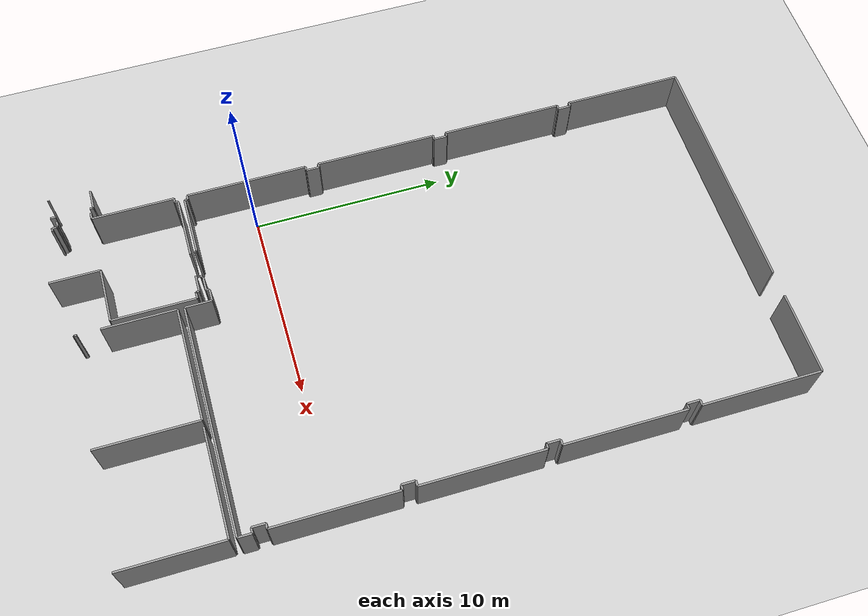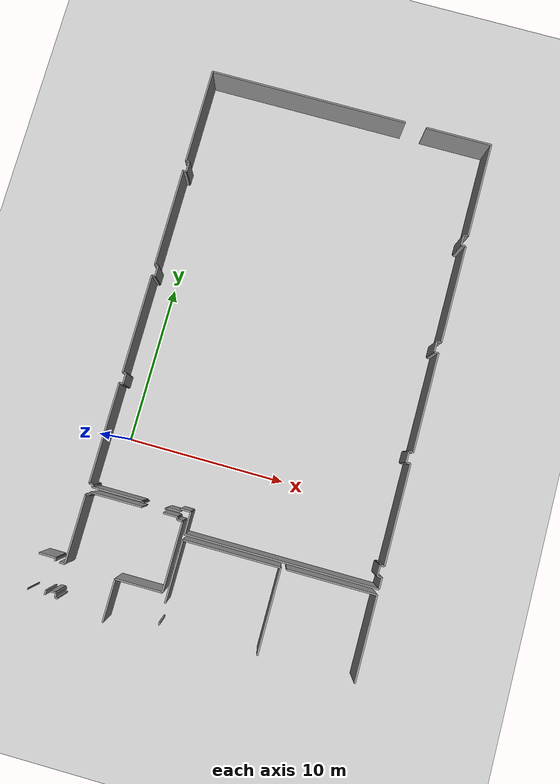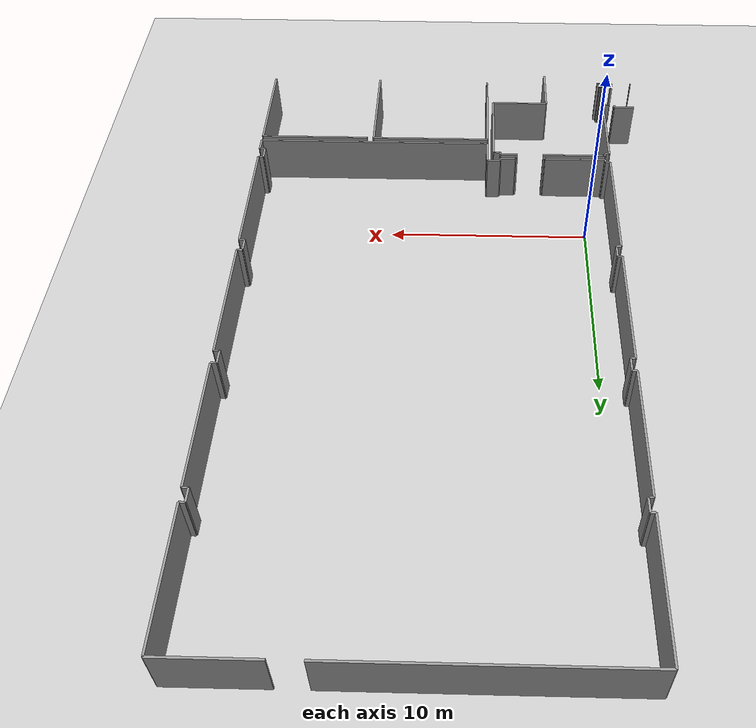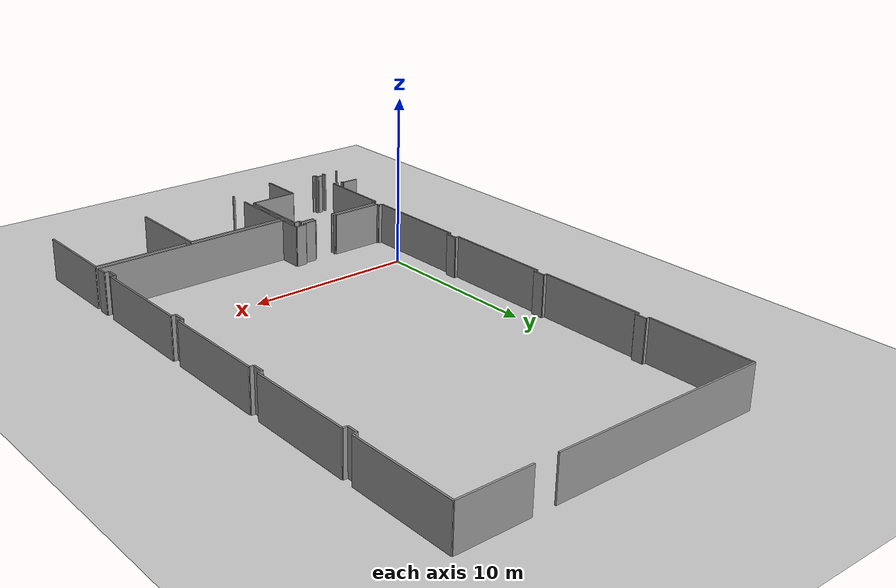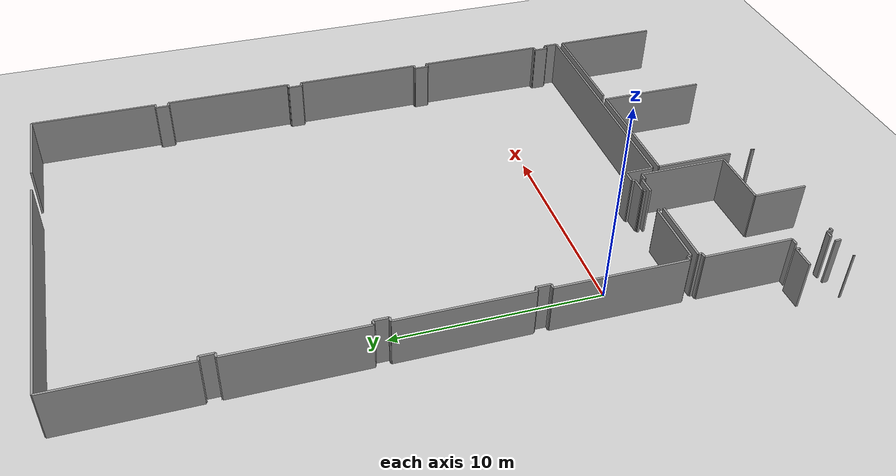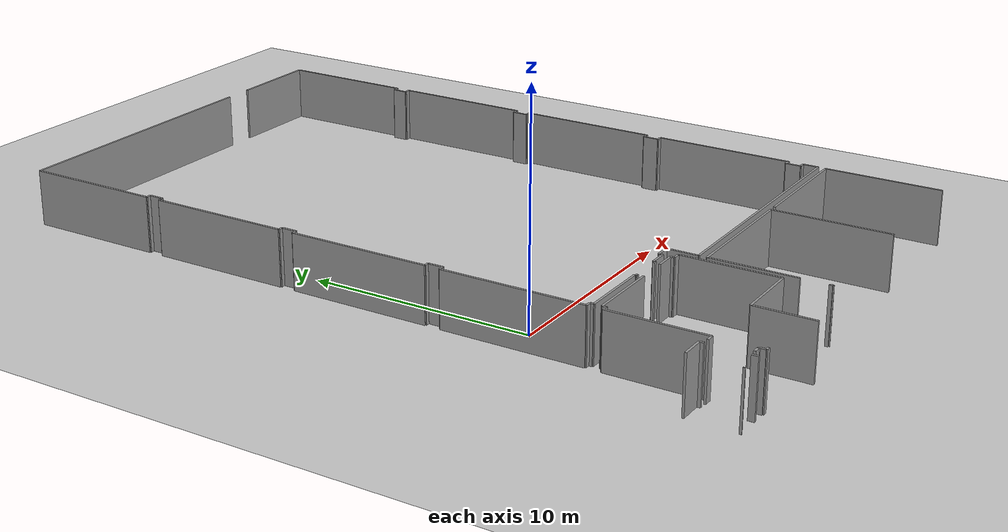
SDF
<sdf version="1.6">
 <world name="default">
  <model name="ground_plane">
   <static>1</static>
   <link name="link">
    <collision name="collision">
     <geometry><plane><normal>0 0 1</normal><size>100 100</size></plane></geometry>
     <surface><friction><ode><mu>100</mu><mu2>50</mu2></ode></friction></surface>
    </collision>
    <visual name="visual">
     <cast_shadows>0</cast_shadows>
     <geometry><plane><normal>0 0 1</normal><size>100 100</size></plane></geometry>
     <material>
      <script><uri>file://media/materials/scripts/gazebo.material</uri><name>Gazebo/Grey</name></script>
     </material>
    </visual>
   </link>
  </model>
  <model name="50055648">
   <static>1</static>
   <link name="Wall_82">
    <collision name="Wall_82_Collision">
     <geometry><box><size>1.06134322481 0.1 2.5</size></box></geometry>
     <pose>0.530671612403 0 1.25 0 0 0</pose>
    </collision>
    <visual name="Wall_82_Visual">
     <pose>0.530671612403 0 1.25 0 0 0</pose>
     <geometry><box><size>1.06134322481 0.1 2.5</size></box></geometry>
     <material>
      <script><uri>file://media/materials/scripts/gazebo.material</uri><name>Gazebo/Grey</name></script>
      <ambient>1 1 1 1</ambient>
     </material>
    </visual>
    <pose>14.1575945428 -31.9669465581 0 0 0 0.0</pose>
   </link>
   <link name="Wall_83">
    <collision name="Wall_83_Collision">
     <geometry><box><size>0.185592154571 0.1 2.5</size></box></geometry>
     <pose>0.0927960772856 0 1.25 0 0 0</pose>
    </collision>
    <visual name="Wall_83_Visual">
     <pose>0.0927960772856 0 1.25 0 0 0</pose>
     <geometry><box><size>0.185592154571 0.1 2.5</size></box></geometry>
     <material>
      <script><uri>file://media/materials/scripts/gazebo.material</uri><name>Gazebo/Grey</name></script>
      <ambient>1 1 1 1</ambient>
     </material>
    </visual>
    <pose>15.2189377676 -31.9669465581 0 0 0 -1.57079632679</pose>
   </link>
   <link name="Wall_84">
    <collision name="Wall_84_Collision">
     <geometry><box><size>0.27845174731 0.1 2.5</size></box></geometry>
     <pose>0.139225873655 0 1.25 0 0 0</pose>
    </collision>
    <visual name="Wall_84_Visual">
     <pose>0.139225873655 0 1.25 0 0 0</pose>
     <geometry><box><size>0.27845174731 0.1 2.5</size></box></geometry>
     <material>
      <script><uri>file://media/materials/scripts/gazebo.material</uri><name>Gazebo/Grey</name></script>
      <ambient>1 1 1 1</ambient>
     </material>
    </visual>
    <pose>15.2189377676 -33.9116627075 0 0 0 -1.57079632679</pose>
   </link>
   <link name="Wall_89">
    <collision name="Wall_89_Collision">
     <geometry><box><size>0.0409039519315 0.1 2.5</size></box></geometry>
     <pose>0.0204519759657 0 1.25 0 0 0</pose>
    </collision>
    <visual name="Wall_89_Visual">
     <pose>0.0204519759657 0 1.25 0 0 0</pose>
     <geometry><box><size>0.0409039519315 0.1 2.5</size></box></geometry>
     <material>
      <script><uri>file://media/materials/scripts/gazebo.material</uri><name>Gazebo/Grey</name></script>
      <ambient>1 1 1 1</ambient>
     </material>
    </visual>
    <pose>14.1706787261 -34.1262179088 0 0 0 3.14159265359</pose>
   </link>
   <link name="Wall_166">
    <collision name="Wall_166_Collision">
     <geometry><box><size>0.175810774762 0.1 2.5</size></box></geometry>
     <pose>0.0879053873808 0 1.25 0 0 0</pose>
    </collision>
    <visual name="Wall_166_Visual">
     <pose>0.0879053873808 0 1.25 0 0 0</pose>
     <geometry><box><size>0.175810774762 0.1 2.5</size></box></geometry>
     <material>
      <script><uri>file://media/materials/scripts/gazebo.material</uri><name>Gazebo/Grey</name></script>
      <ambient>1 1 1 1</ambient>
     </material>
    </visual>
    <pose>16.0258380864 -34.1869386822 0 0 0 3.14159265359</pose>
   </link>
   <link name="Wall_167">
    <collision name="Wall_167_Collision">
     <geometry><box><size>0.235515300873 0.1 2.5</size></box></geometry>
     <pose>0.117757650436 0 1.25 0 0 0</pose>
    </collision>
    <visual name="Wall_167_Visual">
     <pose>0.117757650436 0 1.25 0 0 0</pose>
     <geometry><box><size>0.235515300873 0.1 2.5</size></box></geometry>
     <material>
      <script><uri>file://media/materials/scripts/gazebo.material</uri><name>Gazebo/Grey</name></script>
      <ambient>1 1 1 1</ambient>
     </material>
    </visual>
    <pose>15.8500273116 -34.1869386822 0 0 0 1.57079632679</pose>
   </link>
   <link name="Wall_168">
    <collision name="Wall_168_Collision">
     <geometry><box><size>0.077730563643 0.1 2.5</size></box></geometry>
     <pose>0.0388652818215 0 1.25 0 0 0</pose>
    </collision>
    <visual name="Wall_168_Visual">
     <pose>0.0388652818215 0 1.25 0 0 0</pose>
     <geometry><box><size>0.077730563643 0.1 2.5</size></box></geometry>
     <material>
      <script><uri>file://media/materials/scripts/gazebo.material</uri><name>Gazebo/Grey</name></script>
      <ambient>1 1 1 1</ambient>
     </material>
    </visual>
    <pose>15.8500273116 -33.9514233813 0 0 0 2.38508818102</pose>
   </link>
   <link name="Wall_169">
    <collision name="Wall_169_Collision">
     <geometry><box><size>0.285692508987 0.1 2.5</size></box></geometry>
     <pose>0.142846254494 0 1.25 0 0 0</pose>
    </collision>
    <visual name="Wall_169_Visual">
     <pose>0.142846254494 0 1.25 0 0 0</pose>
     <geometry><box><size>0.285692508987 0.1 2.5</size></box></geometry>
     <material>
      <script><uri>file://media/materials/scripts/gazebo.material</uri><name>Gazebo/Grey</name></script>
      <ambient>1 1 1 1</ambient>
     </material>
    </visual>
    <pose>15.7934985582 -33.8980704005 0 0 0 3.14159265359</pose>
   </link>
   <link name="Wall_170">
    <collision name="Wall_170_Collision">
     <geometry><box><size>0.335869717102 0.1 2.5</size></box></geometry>
     <pose>0.167934858551 0 1.25 0 0 0</pose>
    </collision>
    <visual name="Wall_170_Visual">
     <pose>0.167934858551 0 1.25 0 0 0</pose>
     <geometry><box><size>0.335869717102 0.1 2.5</size></box></geometry>
     <material>
      <script><uri>file://media/materials/scripts/gazebo.material</uri><name>Gazebo/Grey</name></script>
      <ambient>1 1 1 1</ambient>
     </material>
    </visual>
    <pose>15.5078060492 -32.1560955781 0 0 0 0.0</pose>
   </link>
   <link name="Wall_171">
    <collision name="Wall_171_Collision">
     <geometry><box><size>4.2717953278 0.1 2.5</size></box></geometry>
     <pose>2.1358976639 0 1.25 0 0 0</pose>
    </collision>
    <visual name="Wall_171_Visual">
     <pose>2.1358976639 0 1.25 0 0 0</pose>
     <geometry><box><size>4.2717953278 0.1 2.5</size></box></geometry>
     <material>
      <script><uri>file://media/materials/scripts/gazebo.material</uri><name>Gazebo/Grey</name></script>
      <ambient>1 1 1 1</ambient>
     </material>
    </visual>
    <pose>15.8436757663 -32.1560955781 0 0 0 1.57079632679</pose>
   </link>
   <link name="Wall_172">
    <collision name="Wall_172_Collision">
     <geometry><box><size>0.238309980818 0.1 2.5</size></box></geometry>
     <pose>0.119154990409 0 1.25 0 0 0</pose>
    </collision>
    <visual name="Wall_172_Visual">
     <pose>0.119154990409 0 1.25 0 0 0</pose>
     <geometry><box><size>0.238309980818 0.1 2.5</size></box></geometry>
     <material>
      <script><uri>file://media/materials/scripts/gazebo.material</uri><name>Gazebo/Grey</name></script>
      <ambient>1 1 1 1</ambient>
     </material>
    </visual>
    <pose>15.8436757663 -27.8843002503 0 0 0 0.0</pose>
   </link>
   <link name="Wall_173">
    <collision name="Wall_173_Collision">
     <geometry><box><size>0.173397187536 0.1 2.5</size></box></geometry>
     <pose>0.0866985937679 0 1.25 0 0 0</pose>
    </collision>
    <visual name="Wall_173_Visual">
     <pose>0.0866985937679 0 1.25 0 0 0</pose>
     <geometry><box><size>0.173397187536 0.1 2.5</size></box></geometry>
     <material>
      <script><uri>file://media/materials/scripts/gazebo.material</uri><name>Gazebo/Grey</name></script>
      <ambient>1 1 1 1</ambient>
     </material>
    </visual>
    <pose>16.0819857471 -27.8843002503 0 0 0 1.57079632679</pose>
   </link>
   <link name="Wall_174">
    <collision name="Wall_174_Collision">
     <geometry><box><size>3.25580213666 0.1 2.5</size></box></geometry>
     <pose>1.62790106833 0 1.25 0 0 0</pose>
    </collision>
    <visual name="Wall_174_Visual">
     <pose>1.62790106833 0 1.25 0 0 0</pose>
     <geometry><box><size>3.25580213666 0.1 2.5</size></box></geometry>
     <material>
      <script><uri>file://media/materials/scripts/gazebo.material</uri><name>Gazebo/Grey</name></script>
      <ambient>1 1 1 1</ambient>
     </material>
    </visual>
    <pose>16.0819857471 -27.7109030627 0 0 0 0.0</pose>
   </link>
   <link name="Wall_175">
    <collision name="Wall_175_Collision">
     <geometry><box><size>0.902300529719 0.1 2.5</size></box></geometry>
     <pose>0.451150264859 0 1.25 0 0 0</pose>
    </collision>
    <visual name="Wall_175_Visual">
     <pose>0.451150264859 0 1.25 0 0 0</pose>
     <geometry><box><size>0.902300529719 0.1 2.5</size></box></geometry>
     <material>
      <script><uri>file://media/materials/scripts/gazebo.material</uri><name>Gazebo/Grey</name></script>
      <ambient>1 1 1 1</ambient>
     </material>
    </visual>
    <pose>20.6699610015 -27.7109030627 0 0 0 0.0</pose>
   </link>
   <link name="Wall_176">
    <collision name="Wall_176_Collision">
     <geometry><box><size>0.167680796738 0.1 2.5</size></box></geometry>
     <pose>0.0838403983689 0 1.25 0 0 0</pose>
    </collision>
    <visual name="Wall_176_Visual">
     <pose>0.0838403983689 0 1.25 0 0 0</pose>
     <geometry><box><size>0.167680796738 0.1 2.5</size></box></geometry>
     <material>
      <script><uri>file://media/materials/scripts/gazebo.material</uri><name>Gazebo/Grey</name></script>
      <ambient>1 1 1 1</ambient>
     </material>
    </visual>
    <pose>21.5722615312 -27.7109030627 0 0 0 -1.57079632679</pose>
   </link>
   <link name="Wall_177">
    <collision name="Wall_177_Collision">
     <geometry><box><size>0.356829816694 0.1 2.5</size></box></geometry>
     <pose>0.178414908347 0 1.25 0 0 0</pose>
    </collision>
    <visual name="Wall_177_Visual">
     <pose>0.178414908347 0 1.25 0 0 0</pose>
     <geometry><box><size>0.356829816694 0.1 2.5</size></box></geometry>
     <material>
      <script><uri>file://media/materials/scripts/gazebo.material</uri><name>Gazebo/Grey</name></script>
      <ambient>1 1 1 1</ambient>
     </material>
    </visual>
    <pose>21.5722615312 -27.8785838595 0 0 0 0.0</pose>
   </link>
   <link name="Wall_178">
    <collision name="Wall_178_Collision">
     <geometry><box><size>4.32845111216 0.1 2.5</size></box></geometry>
     <pose>2.16422555608 0 1.25 0 0 0</pose>
    </collision>
    <visual name="Wall_178_Visual">
     <pose>2.16422555608 0 1.25 0 0 0</pose>
     <geometry><box><size>4.32845111216 0.1 2.5</size></box></geometry>
     <material>
      <script><uri>file://media/materials/scripts/gazebo.material</uri><name>Gazebo/Grey</name></script>
      <ambient>1 1 1 1</ambient>
     </material>
    </visual>
    <pose>21.9290913479 -27.8785838595 0 0 0 -1.57079632679</pose>
   </link>
   <link name="Wall_179">
    <collision name="Wall_179_Collision">
     <geometry><box><size>2.93733565376 0.1 2.5</size></box></geometry>
     <pose>1.46866782688 0 1.25 0 0 0</pose>
    </collision>
    <visual name="Wall_179_Visual">
     <pose>1.46866782688 0 1.25 0 0 0</pose>
     <geometry><box><size>2.93733565376 0.1 2.5</size></box></geometry>
     <material>
      <script><uri>file://media/materials/scripts/gazebo.material</uri><name>Gazebo/Grey</name></script>
      <ambient>1 1 1 1</ambient>
     </material>
    </visual>
    <pose>21.9290913479 -32.2070349716 0 0 0 3.14159265359</pose>
   </link>
   <link name="Wall_180">
    <collision name="Wall_180_Collision">
     <geometry><box><size>2.60375249298 0.1 2.5</size></box></geometry>
     <pose>1.30187624649 0 1.25 0 0 0</pose>
    </collision>
    <visual name="Wall_180_Visual">
     <pose>1.30187624649 0 1.25 0 0 0</pose>
     <geometry><box><size>2.60375249298 0.1 2.5</size></box></geometry>
     <material>
      <script><uri>file://media/materials/scripts/gazebo.material</uri><name>Gazebo/Grey</name></script>
      <ambient>1 1 1 1</ambient>
     </material>
    </visual>
    <pose>18.9917556942 -32.2070349716 0 0 0 -1.57079632679</pose>
   </link>
   <link name="Wall_187">
    <collision name="Wall_187_Collision">
     <geometry><box><size>6.3211849443 0.1 2.5</size></box></geometry>
     <pose>3.16059247215 0 1.25 0 0 0</pose>
    </collision>
    <visual name="Wall_187_Visual">
     <pose>3.16059247215 0 1.25 0 0 0</pose>
     <geometry><box><size>6.3211849443 0.1 2.5</size></box></geometry>
     <material>
      <script><uri>file://media/materials/scripts/gazebo.material</uri><name>Gazebo/Grey</name></script>
      <ambient>1 1 1 1</ambient>
     </material>
    </visual>
    <pose>15.852313868 -27.2041767762 0 0 0 1.57079632679</pose>
   </link>
   <link name="Wall_188">
    <collision name="Wall_188_Collision">
     <geometry><box><size>0.230561095515 0.1 2.5</size></box></geometry>
     <pose>0.115280547757 0 1.25 0 0 0</pose>
    </collision>
    <visual name="Wall_188_Visual">
     <pose>0.115280547757 0 1.25 0 0 0</pose>
     <geometry><box><size>0.230561095515 0.1 2.5</size></box></geometry>
     <material>
      <script><uri>file://media/materials/scripts/gazebo.material</uri><name>Gazebo/Grey</name></script>
      <ambient>1 1 1 1</ambient>
     </material>
    </visual>
    <pose>15.852313868 -20.8829918319 0 0 0 0.0</pose>
   </link>
   <link name="Wall_189">
    <collision name="Wall_189_Collision">
     <geometry><box><size>0.686475019372 0.1 2.5</size></box></geometry>
     <pose>0.343237509686 0 1.25 0 0 0</pose>
    </collision>
    <visual name="Wall_189_Visual">
     <pose>0.343237509686 0 1.25 0 0 0</pose>
     <geometry><box><size>0.686475019372 0.1 2.5</size></box></geometry>
     <material>
      <script><uri>file://media/materials/scripts/gazebo.material</uri><name>Gazebo/Grey</name></script>
      <ambient>1 1 1 1</ambient>
     </material>
    </visual>
    <pose>16.0828749635 -20.8829918319 0 0 0 1.57079632679</pose>
   </link>
   <link name="Wall_190">
    <collision name="Wall_190_Collision">
     <geometry><box><size>0.219636437545 0.1 2.5</size></box></geometry>
     <pose>0.109818218773 0 1.25 0 0 0</pose>
    </collision>
    <visual name="Wall_190_Visual">
     <pose>0.109818218773 0 1.25 0 0 0</pose>
     <geometry><box><size>0.219636437545 0.1 2.5</size></box></geometry>
     <material>
      <script><uri>file://media/materials/scripts/gazebo.material</uri><name>Gazebo/Grey</name></script>
      <ambient>1 1 1 1</ambient>
     </material>
    </visual>
    <pose>16.0828749635 -20.1965168125 0 0 0 3.14159265359</pose>
   </link>
   <link name="Wall_191">
    <collision name="Wall_191_Collision">
     <geometry><box><size>6.31521449169 0.1 2.5</size></box></geometry>
     <pose>3.15760724584 0 1.25 0 0 0</pose>
    </collision>
    <visual name="Wall_191_Visual">
     <pose>3.15760724584 0 1.25 0 0 0</pose>
     <geometry><box><size>6.31521449169 0.1 2.5</size></box></geometry>
     <material>
      <script><uri>file://media/materials/scripts/gazebo.material</uri><name>Gazebo/Grey</name></script>
      <ambient>1 1 1 1</ambient>
     </material>
    </visual>
    <pose>15.8632385259 -20.1965168125 0 0 0 1.57079632679</pose>
   </link>
   <link name="Wall_192">
    <collision name="Wall_192_Collision">
     <geometry><box><size>0.216333633973 0.1 2.5</size></box></geometry>
     <pose>0.108166816987 0 1.25 0 0 0</pose>
    </collision>
    <visual name="Wall_192_Visual">
     <pose>0.108166816987 0 1.25 0 0 0</pose>
     <geometry><box><size>0.216333633973 0.1 2.5</size></box></geometry>
     <material>
      <script><uri>file://media/materials/scripts/gazebo.material</uri><name>Gazebo/Grey</name></script>
      <ambient>1 1 1 1</ambient>
     </material>
    </visual>
    <pose>15.8632385259 -13.8813023209 0 0 0 0.0</pose>
   </link>
   <link name="Wall_193">
    <collision name="Wall_193_Collision">
     <geometry><box><size>0.697145615528 0.1 2.5</size></box></geometry>
     <pose>0.348572807764 0 1.25 0 0 0</pose>
    </collision>
    <visual name="Wall_193_Visual">
     <pose>0.348572807764 0 1.25 0 0 0</pose>
     <geometry><box><size>0.697145615528 0.1 2.5</size></box></geometry>
     <material>
      <script><uri>file://media/materials/scripts/gazebo.material</uri><name>Gazebo/Grey</name></script>
      <ambient>1 1 1 1</ambient>
     </material>
    </visual>
    <pose>16.0795721599 -13.8813023209 0 0 0 1.57079632679</pose>
   </link>
   <link name="Wall_194">
    <collision name="Wall_194_Collision">
     <geometry><box><size>0.219636437545 0.1 2.5</size></box></geometry>
     <pose>0.109818218773 0 1.25 0 0 0</pose>
    </collision>
    <visual name="Wall_194_Visual">
     <pose>0.109818218773 0 1.25 0 0 0</pose>
     <geometry><box><size>0.219636437545 0.1 2.5</size></box></geometry>
     <material>
      <script><uri>file://media/materials/scripts/gazebo.material</uri><name>Gazebo/Grey</name></script>
      <ambient>1 1 1 1</ambient>
     </material>
    </visual>
    <pose>16.0795721599 -13.1841567053 0 0 0 3.14159265359</pose>
   </link>
   <link name="Wall_195">
    <collision name="Wall_195_Collision">
     <geometry><box><size>6.32156603702 0.1 2.5</size></box></geometry>
     <pose>3.16078301851 0 1.25 0 0 0</pose>
    </collision>
    <visual name="Wall_195_Visual">
     <pose>3.16078301851 0 1.25 0 0 0</pose>
     <geometry><box><size>6.32156603702 0.1 2.5</size></box></geometry>
     <material>
      <script><uri>file://media/materials/scripts/gazebo.material</uri><name>Gazebo/Grey</name></script>
      <ambient>1 1 1 1</ambient>
     </material>
    </visual>
    <pose>15.8599357224 -13.1841567053 0 0 0 1.57079632679</pose>
   </link>
   <link name="Wall_196">
    <collision name="Wall_196_Collision">
     <geometry><box><size>0.219382375732 0.1 2.5</size></box></geometry>
     <pose>0.109691187866 0 1.25 0 0 0</pose>
    </collision>
    <visual name="Wall_196_Visual">
     <pose>0.109691187866 0 1.25 0 0 0</pose>
     <geometry><box><size>0.219382375732 0.1 2.5</size></box></geometry>
     <material>
      <script><uri>file://media/materials/scripts/gazebo.material</uri><name>Gazebo/Grey</name></script>
      <ambient>1 1 1 1</ambient>
     </material>
    </visual>
    <pose>15.8599357224 -6.86259066831 0 0 0 0.0</pose>
   </link>
   <link name="Wall_197">
    <collision name="Wall_197_Collision">
     <geometry><box><size>0.675169268683 0.1 2.5</size></box></geometry>
     <pose>0.337584634342 0 1.25 0 0 0</pose>
    </collision>
    <visual name="Wall_197_Visual">
     <pose>0.337584634342 0 1.25 0 0 0</pose>
     <geometry><box><size>0.675169268683 0.1 2.5</size></box></geometry>
     <material>
      <script><uri>file://media/materials/scripts/gazebo.material</uri><name>Gazebo/Grey</name></script>
      <ambient>1 1 1 1</ambient>
     </material>
    </visual>
    <pose>16.0793180981 -6.86259066831 0 0 0 1.57079632679</pose>
   </link>
   <link name="Wall_198">
    <collision name="Wall_198_Collision">
     <geometry><box><size>0.222939241117 0.1 2.5</size></box></geometry>
     <pose>0.111469620559 0 1.25 0 0 0</pose>
    </collision>
    <visual name="Wall_198_Visual">
     <pose>0.111469620559 0 1.25 0 0 0</pose>
     <geometry><box><size>0.222939241117 0.1 2.5</size></box></geometry>
     <material>
      <script><uri>file://media/materials/scripts/gazebo.material</uri><name>Gazebo/Grey</name></script>
      <ambient>1 1 1 1</ambient>
     </material>
    </visual>
    <pose>16.0793180981 -6.18742139963 0 0 0 3.14159265359</pose>
   </link>
   <link name="Wall_199">
    <collision name="Wall_199_Collision">
     <geometry><box><size>6.18742139963 0.1 2.5</size></box></geometry>
     <pose>3.09371069981 0 1.25 0 0 0</pose>
    </collision>
    <visual name="Wall_199_Visual">
     <pose>3.09371069981 0 1.25 0 0 0</pose>
     <geometry><box><size>6.18742139963 0.1 2.5</size></box></geometry>
     <material>
      <script><uri>file://media/materials/scripts/gazebo.material</uri><name>Gazebo/Grey</name></script>
      <ambient>1 1 1 1</ambient>
     </material>
    </visual>
    <pose>15.856378857 -6.18742139963 0 0 0 1.57079632679</pose>
   </link>
   <link name="Wall_200">
    <collision name="Wall_200_Collision">
     <geometry><box><size>12.8226267451 0.1 2.5</size></box></geometry>
     <pose>6.41131337254 0 1.25 0 0 0</pose>
    </collision>
    <visual name="Wall_200_Visual">
     <pose>6.41131337254 0 1.25 0 0 0</pose>
     <geometry><box><size>12.8226267451 0.1 2.5</size></box></geometry>
     <material>
      <script><uri>file://media/materials/scripts/gazebo.material</uri><name>Gazebo/Grey</name></script>
      <ambient>1 1 1 1</ambient>
     </material>
    </visual>
    <pose>15.856378857 -0.0 0 0 0 0.0</pose>
   </link>
   <link name="Wall_201">
    <collision name="Wall_201_Collision">
     <geometry><box><size>4.2583300517 0.1 2.5</size></box></geometry>
     <pose>2.12916502585 0 1.25 0 0 0</pose>
    </collision>
    <visual name="Wall_201_Visual">
     <pose>2.12916502585 0 1.25 0 0 0</pose>
     <geometry><box><size>4.2583300517 0.1 2.5</size></box></geometry>
     <material>
      <script><uri>file://media/materials/scripts/gazebo.material</uri><name>Gazebo/Grey</name></script>
      <ambient>1 1 1 1</ambient>
     </material>
    </visual>
    <pose>30.0368389629 -0.0 0 0 0 0.0</pose>
   </link>
   <link name="Wall_202">
    <collision name="Wall_202_Collision">
     <geometry><box><size>6.19682168672 0.1 2.5</size></box></geometry>
     <pose>3.09841084336 0 1.25 0 0 0</pose>
    </collision>
    <visual name="Wall_202_Visual">
     <pose>3.09841084336 0 1.25 0 0 0</pose>
     <geometry><box><size>6.19682168672 0.1 2.5</size></box></geometry>
     <material>
      <script><uri>file://media/materials/scripts/gazebo.material</uri><name>Gazebo/Grey</name></script>
      <ambient>1 1 1 1</ambient>
     </material>
    </visual>
    <pose>34.2951690146 -0.0 0 0 0 -1.57079632679</pose>
   </link>
   <link name="Wall_203">
    <collision name="Wall_203_Collision">
     <geometry><box><size>0.267654120247 0.1 2.5</size></box></geometry>
     <pose>0.133827060124 0 1.25 0 0 0</pose>
    </collision>
    <visual name="Wall_203_Visual">
     <pose>0.133827060124 0 1.25 0 0 0</pose>
     <geometry><box><size>0.267654120247 0.1 2.5</size></box></geometry>
     <material>
      <script><uri>file://media/materials/scripts/gazebo.material</uri><name>Gazebo/Grey</name></script>
      <ambient>1 1 1 1</ambient>
     </material>
    </visual>
    <pose>34.2951690146 -6.19682168672 0 0 0 3.14159265359</pose>
   </link>
   <link name="Wall_204">
    <collision name="Wall_204_Collision">
     <geometry><box><size>0.670850217858 0.1 2.5</size></box></geometry>
     <pose>0.335425108929 0 1.25 0 0 0</pose>
    </collision>
    <visual name="Wall_204_Visual">
     <pose>0.335425108929 0 1.25 0 0 0</pose>
     <geometry><box><size>0.670850217858 0.1 2.5</size></box></geometry>
     <material>
      <script><uri>file://media/materials/scripts/gazebo.material</uri><name>Gazebo/Grey</name></script>
      <ambient>1 1 1 1</ambient>
     </material>
    </visual>
    <pose>34.0275148944 -6.19682168672 0 0 0 -1.57079632679</pose>
   </link>
   <link name="Wall_205">
    <collision name="Wall_205_Collision">
     <geometry><box><size>0.27807065459 0.1 2.5</size></box></geometry>
     <pose>0.139035327295 0 1.25 0 0 0</pose>
    </collision>
    <visual name="Wall_205_Visual">
     <pose>0.139035327295 0 1.25 0 0 0</pose>
     <geometry><box><size>0.27807065459 0.1 2.5</size></box></geometry>
     <material>
      <script><uri>file://media/materials/scripts/gazebo.material</uri><name>Gazebo/Grey</name></script>
      <ambient>1 1 1 1</ambient>
     </material>
    </visual>
    <pose>34.0275148944 -6.86767190457 0 0 0 0.0</pose>
   </link>
   <link name="Wall_206">
    <collision name="Wall_206_Collision">
     <geometry><box><size>6.31470636806 0.1 2.5</size></box></geometry>
     <pose>3.15735318403 0 1.25 0 0 0</pose>
    </collision>
    <visual name="Wall_206_Visual">
     <pose>3.15735318403 0 1.25 0 0 0</pose>
     <geometry><box><size>6.31470636806 0.1 2.5</size></box></geometry>
     <material>
      <script><uri>file://media/materials/scripts/gazebo.material</uri><name>Gazebo/Grey</name></script>
      <ambient>1 1 1 1</ambient>
     </material>
    </visual>
    <pose>34.305585549 -6.86767190457 0 0 0 -1.57079632679</pose>
   </link>
   <link name="Wall_207">
    <collision name="Wall_207_Collision">
     <geometry><box><size>0.277943623684 0.1 2.5</size></box></geometry>
     <pose>0.138971811842 0 1.25 0 0 0</pose>
    </collision>
    <visual name="Wall_207_Visual">
     <pose>0.138971811842 0 1.25 0 0 0</pose>
     <geometry><box><size>0.277943623684 0.1 2.5</size></box></geometry>
     <material>
      <script><uri>file://media/materials/scripts/gazebo.material</uri><name>Gazebo/Grey</name></script>
      <ambient>1 1 1 1</ambient>
     </material>
    </visual>
    <pose>34.305585549 -13.1823782726 0 0 0 3.14159265359</pose>
   </link>
   <link name="Wall_208">
    <collision name="Wall_208_Collision">
     <geometry><box><size>0.699686233661 0.1 2.5</size></box></geometry>
     <pose>0.34984311683 0 1.25 0 0 0</pose>
    </collision>
    <visual name="Wall_208_Visual">
     <pose>0.34984311683 0 1.25 0 0 0</pose>
     <geometry><box><size>0.699686233661 0.1 2.5</size></box></geometry>
     <material>
      <script><uri>file://media/materials/scripts/gazebo.material</uri><name>Gazebo/Grey</name></script>
      <ambient>1 1 1 1</ambient>
     </material>
    </visual>
    <pose>34.0276419253 -13.1823782726 0 0 0 -1.57079632679</pose>
   </link>
   <link name="Wall_209">
    <collision name="Wall_209_Collision">
     <geometry><box><size>0.266510842088 0.1 2.5</size></box></geometry>
     <pose>0.133255421044 0 1.25 0 0 0</pose>
    </collision>
    <visual name="Wall_209_Visual">
     <pose>0.133255421044 0 1.25 0 0 0</pose>
     <geometry><box><size>0.266510842088 0.1 2.5</size></box></geometry>
     <material>
      <script><uri>file://media/materials/scripts/gazebo.material</uri><name>Gazebo/Grey</name></script>
      <ambient>1 1 1 1</ambient>
     </material>
    </visual>
    <pose>34.0276419253 -13.8820645063 0 0 0 0.0</pose>
   </link>
   <link name="Wall_210">
    <collision name="Wall_210_Collision">
     <geometry><box><size>6.31013325542 0.1 2.5</size></box></geometry>
     <pose>3.15506662771 0 1.25 0 0 0</pose>
    </collision>
    <visual name="Wall_210_Visual">
     <pose>3.15506662771 0 1.25 0 0 0</pose>
     <geometry><box><size>6.31013325542 0.1 2.5</size></box></geometry>
     <material>
      <script><uri>file://media/materials/scripts/gazebo.material</uri><name>Gazebo/Grey</name></script>
      <ambient>1 1 1 1</ambient>
     </material>
    </visual>
    <pose>34.2941527674 -13.8820645063 0 0 0 -1.57079632679</pose>
   </link>
   <link name="Wall_211">
    <collision name="Wall_211_Collision">
     <geometry><box><size>0.268797398407 0.1 2.5</size></box></geometry>
     <pose>0.134398699204 0 1.25 0 0 0</pose>
    </collision>
    <visual name="Wall_211_Visual">
     <pose>0.134398699204 0 1.25 0 0 0</pose>
     <geometry><box><size>0.268797398407 0.1 2.5</size></box></geometry>
     <material>
      <script><uri>file://media/materials/scripts/gazebo.material</uri><name>Gazebo/Grey</name></script>
      <ambient>1 1 1 1</ambient>
     </material>
    </visual>
    <pose>34.2941527674 -20.1921977617 0 0 0 3.14159265359</pose>
   </link>
   <link name="Wall_212">
    <collision name="Wall_212_Collision">
     <geometry><box><size>0.697399677341 0.1 2.5</size></box></geometry>
     <pose>0.348699838671 0 1.25 0 0 0</pose>
    </collision>
    <visual name="Wall_212_Visual">
     <pose>0.348699838671 0 1.25 0 0 0</pose>
     <geometry><box><size>0.697399677341 0.1 2.5</size></box></geometry>
     <material>
      <script><uri>file://media/materials/scripts/gazebo.material</uri><name>Gazebo/Grey</name></script>
      <ambient>1 1 1 1</ambient>
     </material>
    </visual>
    <pose>34.025355369 -20.1921977617 0 0 0 -1.57079632679</pose>
   </link>
   <link name="Wall_213">
    <collision name="Wall_213_Collision">
     <geometry><box><size>0.2686703675 0.1 2.5</size></box></geometry>
     <pose>0.13433518375 0 1.25 0 0 0</pose>
    </collision>
    <visual name="Wall_213_Visual">
     <pose>0.13433518375 0 1.25 0 0 0</pose>
     <geometry><box><size>0.2686703675 0.1 2.5</size></box></geometry>
     <material>
      <script><uri>file://media/materials/scripts/gazebo.material</uri><name>Gazebo/Grey</name></script>
      <ambient>1 1 1 1</ambient>
     </material>
    </visual>
    <pose>34.025355369 -20.8895974391 0 0 0 0.0</pose>
   </link>
   <link name="Wall_214">
    <collision name="Wall_214_Collision">
     <geometry><box><size>6.31076840995 0.1 2.5</size></box></geometry>
     <pose>3.15538420498 0 1.25 0 0 0</pose>
    </collision>
    <visual name="Wall_214_Visual">
     <pose>3.15538420498 0 1.25 0 0 0</pose>
     <geometry><box><size>6.31076840995 0.1 2.5</size></box></geometry>
     <material>
      <script><uri>file://media/materials/scripts/gazebo.material</uri><name>Gazebo/Grey</name></script>
      <ambient>1 1 1 1</ambient>
     </material>
    </visual>
    <pose>34.2940257365 -20.8895974391 0 0 0 -1.57079632679</pose>
   </link>
   <link name="Wall_215">
    <collision name="Wall_215_Collision">
     <geometry><box><size>0.263081007609 0.1 2.5</size></box></geometry>
     <pose>0.131540503805 0 1.25 0 0 0</pose>
    </collision>
    <visual name="Wall_215_Visual">
     <pose>0.131540503805 0 1.25 0 0 0</pose>
     <geometry><box><size>0.263081007609 0.1 2.5</size></box></geometry>
     <material>
      <script><uri>file://media/materials/scripts/gazebo.material</uri><name>Gazebo/Grey</name></script>
      <ambient>1 1 1 1</ambient>
     </material>
    </visual>
    <pose>34.2940257365 -27.200365849 0 0 0 3.14159265359</pose>
   </link>
   <link name="Wall_216">
    <collision name="Wall_216_Collision">
     <geometry><box><size>0.682918153987 0.1 2.5</size></box></geometry>
     <pose>0.341459076993 0 1.25 0 0 0</pose>
    </collision>
    <visual name="Wall_216_Visual">
     <pose>0.341459076993 0 1.25 0 0 0</pose>
     <geometry><box><size>0.682918153987 0.1 2.5</size></box></geometry>
     <material>
      <script><uri>file://media/materials/scripts/gazebo.material</uri><name>Gazebo/Grey</name></script>
      <ambient>1 1 1 1</ambient>
     </material>
    </visual>
    <pose>34.0309447289 -27.200365849 0 0 0 -1.57079632679</pose>
   </link>
   <link name="Wall_217">
    <collision name="Wall_217_Collision">
     <geometry><box><size>0.281754550882 0.1 2.5</size></box></geometry>
     <pose>0.140877275441 0 1.25 0 0 0</pose>
    </collision>
    <visual name="Wall_217_Visual">
     <pose>0.140877275441 0 1.25 0 0 0</pose>
     <geometry><box><size>0.281754550882 0.1 2.5</size></box></geometry>
     <material>
      <script><uri>file://media/materials/scripts/gazebo.material</uri><name>Gazebo/Grey</name></script>
      <ambient>1 1 1 1</ambient>
     </material>
    </visual>
    <pose>34.0309447289 -27.883284003 0 0 0 0.0</pose>
   </link>
   <link name="Wall_218">
    <collision name="Wall_218_Collision">
     <geometry><box><size>0.706799964431 0.1 2.5</size></box></geometry>
     <pose>0.353399982216 0 1.25 0 0 0</pose>
    </collision>
    <visual name="Wall_218_Visual">
     <pose>0.353399982216 0 1.25 0 0 0</pose>
     <geometry><box><size>0.706799964431 0.1 2.5</size></box></geometry>
     <material>
      <script><uri>file://media/materials/scripts/gazebo.material</uri><name>Gazebo/Grey</name></script>
      <ambient>1 1 1 1</ambient>
     </material>
    </visual>
    <pose>34.3126992797 -27.883284003 0 0 0 -1.57079632679</pose>
   </link>
   <link name="Wall_219">
    <collision name="Wall_219_Collision">
     <geometry><box><size>12.05688444 0.1 2.5</size></box></geometry>
     <pose>6.02844221999 0 1.25 0 0 0</pose>
    </collision>
    <visual name="Wall_219_Visual">
     <pose>6.02844221999 0 1.25 0 0 0</pose>
     <geometry><box><size>12.05688444 0.1 2.5</size></box></geometry>
     <material>
      <script><uri>file://media/materials/scripts/gazebo.material</uri><name>Gazebo/Grey</name></script>
      <ambient>1 1 1 1</ambient>
     </material>
    </visual>
    <pose>34.3126992797 -28.5900839674 0 0 0 3.14159265359</pose>
   </link>
   <link name="Wall_220">
    <collision name="Wall_220_Collision">
     <geometry><box><size>1.38590719122 0.1 2.5</size></box></geometry>
     <pose>0.69295359561 0 1.25 0 0 0</pose>
    </collision>
    <visual name="Wall_220_Visual">
     <pose>0.69295359561 0 1.25 0 0 0</pose>
     <geometry><box><size>1.38590719122 0.1 2.5</size></box></geometry>
     <material>
      <script><uri>file://media/materials/scripts/gazebo.material</uri><name>Gazebo/Grey</name></script>
      <ambient>1 1 1 1</ambient>
     </material>
    </visual>
    <pose>22.2558148398 -28.5900839674 0 0 0 1.57079632679</pose>
   </link>
   <link name="Wall_221">
    <collision name="Wall_221_Collision">
     <geometry><box><size>0.653574014558 0.1 2.5</size></box></geometry>
     <pose>0.326787007279 0 1.25 0 0 0</pose>
    </collision>
    <visual name="Wall_221_Visual">
     <pose>0.326787007279 0 1.25 0 0 0</pose>
     <geometry><box><size>0.653574014558 0.1 2.5</size></box></geometry>
     <material>
      <script><uri>file://media/materials/scripts/gazebo.material</uri><name>Gazebo/Grey</name></script>
      <ambient>1 1 1 1</ambient>
     </material>
    </visual>
    <pose>22.2558148398 -27.2041767762 0 0 0 3.14159265359</pose>
   </link>
   <link name="Wall_222">
    <collision name="Wall_222_Collision">
     <geometry><box><size>0.164759085886 0.1 2.5</size></box></geometry>
     <pose>0.0823795429428 0 1.25 0 0 0</pose>
    </collision>
    <visual name="Wall_222_Visual">
     <pose>0.0823795429428 0 1.25 0 0 0</pose>
     <geometry><box><size>0.164759085886 0.1 2.5</size></box></geometry>
     <material>
      <script><uri>file://media/materials/scripts/gazebo.material</uri><name>Gazebo/Grey</name></script>
      <ambient>1 1 1 1</ambient>
     </material>
    </visual>
    <pose>21.6022408252 -27.2041767762 0 0 0 -1.57079632679</pose>
   </link>
   <link name="Wall_223">
    <collision name="Wall_223_Collision">
     <geometry><box><size>0.790767393707 0.1 2.5</size></box></geometry>
     <pose>0.395383696853 0 1.25 0 0 0</pose>
    </collision>
    <visual name="Wall_223_Visual">
     <pose>0.395383696853 0 1.25 0 0 0</pose>
     <geometry><box><size>0.790767393707 0.1 2.5</size></box></geometry>
     <material>
      <script><uri>file://media/materials/scripts/gazebo.material</uri><name>Gazebo/Grey</name></script>
      <ambient>1 1 1 1</ambient>
     </material>
    </visual>
    <pose>21.6022408252 -27.3689358621 0 0 0 3.14159265359</pose>
   </link>
   <link name="Wall_224">
    <collision name="Wall_224_Collision">
     <geometry><box><size>0.0757104203453 0.1 2.5</size></box></geometry>
     <pose>0.0378552101726 0 1.25 0 0 0</pose>
    </collision>
    <visual name="Wall_224_Visual">
     <pose>0.0378552101726 0 1.25 0 0 0</pose>
     <geometry><box><size>0.0757104203453 0.1 2.5</size></box></geometry>
     <material>
      <script><uri>file://media/materials/scripts/gazebo.material</uri><name>Gazebo/Grey</name></script>
      <ambient>1 1 1 1</ambient>
     </material>
    </visual>
    <pose>20.8114734315 -27.3689358621 0 0 0 -1.57079632679</pose>
   </link>
   <link name="Wall_225">
    <collision name="Wall_225_Collision">
     <geometry><box><size>0.121187484915 0.1 2.5</size></box></geometry>
     <pose>0.0605937424575 0 1.25 0 0 0</pose>
    </collision>
    <visual name="Wall_225_Visual">
     <pose>0.0605937424575 0 1.25 0 0 0</pose>
     <geometry><box><size>0.121187484915 0.1 2.5</size></box></geometry>
     <material>
      <script><uri>file://media/materials/scripts/gazebo.material</uri><name>Gazebo/Grey</name></script>
      <ambient>1 1 1 1</ambient>
     </material>
    </visual>
    <pose>20.8114734315 -27.4446462824 0 0 0 3.14159265359</pose>
   </link>
   <link name="Wall_226">
    <collision name="Wall_226_Collision">
     <geometry><box><size>0.118646866783 0.1 2.5</size></box></geometry>
     <pose>0.0593234333913 0 1.25 0 0 0</pose>
    </collision>
    <visual name="Wall_226_Visual">
     <pose>0.0593234333913 0 1.25 0 0 0</pose>
     <geometry><box><size>0.118646866783 0.1 2.5</size></box></geometry>
     <material>
      <script><uri>file://media/materials/scripts/gazebo.material</uri><name>Gazebo/Grey</name></script>
      <ambient>1 1 1 1</ambient>
     </material>
    </visual>
    <pose>19.3640832815 -27.4446462824 0 0 0 3.14159265359</pose>
   </link>
   <link name="Wall_227">
    <collision name="Wall_227_Collision">
     <geometry><box><size>0.070121060454 0.1 2.5</size></box></geometry>
     <pose>0.035060530227 0 1.25 0 0 0</pose>
    </collision>
    <visual name="Wall_227_Visual">
     <pose>0.035060530227 0 1.25 0 0 0</pose>
     <geometry><box><size>0.070121060454 0.1 2.5</size></box></geometry>
     <material>
      <script><uri>file://media/materials/scripts/gazebo.material</uri><name>Gazebo/Grey</name></script>
      <ambient>1 1 1 1</ambient>
     </material>
    </visual>
    <pose>19.2454364147 -27.4446462824 0 0 0 1.57079632679</pose>
   </link>
   <link name="Wall_228">
    <collision name="Wall_228_Collision">
     <geometry><box><size>3.14680961878 0.1 2.5</size></box></geometry>
     <pose>1.57340480939 0 1.25 0 0 0</pose>
    </collision>
    <visual name="Wall_228_Visual">
     <pose>1.57340480939 0 1.25 0 0 0</pose>
     <geometry><box><size>3.14680961878 0.1 2.5</size></box></geometry>
     <material>
      <script><uri>file://media/materials/scripts/gazebo.material</uri><name>Gazebo/Grey</name></script>
      <ambient>1 1 1 1</ambient>
     </material>
    </visual>
    <pose>19.2454364147 -27.374525222 0 0 0 3.14159265359</pose>
   </link>
   <link name="Wall_229">
    <collision name="Wall_229_Collision">
     <geometry><box><size>0.17136469303 0.1 2.5</size></box></geometry>
     <pose>0.0856823465149 0 1.25 0 0 0</pose>
    </collision>
    <visual name="Wall_229_Visual">
     <pose>0.0856823465149 0 1.25 0 0 0</pose>
     <geometry><box><size>0.17136469303 0.1 2.5</size></box></geometry>
     <material>
      <script><uri>file://media/materials/scripts/gazebo.material</uri><name>Gazebo/Grey</name></script>
      <ambient>1 1 1 1</ambient>
     </material>
    </visual>
    <pose>16.0986267959 -27.374525222 0 0 0 1.57079632679</pose>
   </link>
   <link name="Wall_230">
    <collision name="Wall_230_Collision">
     <geometry><box><size>0.246315024362 0.1 2.5</size></box></geometry>
     <pose>0.123157512181 0 1.25 0 0 0</pose>
    </collision>
    <visual name="Wall_230_Visual">
     <pose>0.123157512181 0 1.25 0 0 0</pose>
     <geometry><box><size>0.246315024362 0.1 2.5</size></box></geometry>
     <material>
      <script><uri>file://media/materials/scripts/gazebo.material</uri><name>Gazebo/Grey</name></script>
      <ambient>1 1 1 1</ambient>
     </material>
    </visual>
    <pose>16.0986267959 -27.203160529 0 0 0 -3.13746683894</pose>
   </link>
   <link name="Wall_232">
    <collision name="Wall_232_Collision">
     <geometry><box><size>0.020706037779 0.1 2.5</size></box></geometry>
     <pose>0.0103530188895 0 1.25 0 0 0</pose>
    </collision>
    <visual name="Wall_232_Visual">
     <pose>0.0103530188895 0 1.25 0 0 0</pose>
     <geometry><box><size>0.020706037779 0.1 2.5</size></box></geometry>
     <material>
      <script><uri>file://media/materials/scripts/gazebo.material</uri><name>Gazebo/Grey</name></script>
      <ambient>1 1 1 1</ambient>
     </material>
    </visual>
    <pose>22.2774100939 -34.0452992213 0 0 0 3.14159265359</pose>
   </link>
   <link name="Wall_233">
    <collision name="Wall_233_Collision">
     <geometry><box><size>0.147228820772 0.1 2.5</size></box></geometry>
     <pose>0.073614410386 0 1.25 0 0 0</pose>
    </collision>
    <visual name="Wall_233_Visual">
     <pose>0.073614410386 0 1.25 0 0 0</pose>
     <geometry><box><size>0.147228820772 0.1 2.5</size></box></geometry>
     <material>
      <script><uri>file://media/materials/scripts/gazebo.material</uri><name>Gazebo/Grey</name></script>
      <ambient>1 1 1 1</ambient>
     </material>
    </visual>
    <pose>22.2567040561 -34.0452992213 0 0 0 1.57079632679</pose>
   </link>
   <link name="Wall_234">
    <collision name="Wall_234_Collision">
     <geometry><box><size>3.8168976512 0.1 2.5</size></box></geometry>
     <pose>1.9084488256 0 1.25 0 0 0</pose>
    </collision>
    <visual name="Wall_234_Visual">
     <pose>1.9084488256 0 1.25 0 0 0</pose>
     <geometry><box><size>3.8168976512 0.1 2.5</size></box></geometry>
     <material>
      <script><uri>file://media/materials/scripts/gazebo.material</uri><name>Gazebo/Grey</name></script>
      <ambient>1 1 1 1</ambient>
     </material>
    </visual>
    <pose>22.2567040561 -32.7551733337 0 0 0 1.57079632679</pose>
   </link>
   <link name="Wall_235">
    <collision name="Wall_235_Collision">
     <geometry><box><size>6.09189415785 0.1 2.5</size></box></geometry>
     <pose>3.04594707892 0 1.25 0 0 0</pose>
    </collision>
    <visual name="Wall_235_Visual">
     <pose>3.04594707892 0 1.25 0 0 0</pose>
     <geometry><box><size>6.09189415785 0.1 2.5</size></box></geometry>
     <material>
      <script><uri>file://media/materials/scripts/gazebo.material</uri><name>Gazebo/Grey</name></script>
      <ambient>1 1 1 1</ambient>
     </material>
    </visual>
    <pose>22.2567040561 -28.9382756825 0 0 0 0.0</pose>
   </link>
   <link name="Wall_236">
    <collision name="Wall_236_Collision">
     <geometry><box><size>5.25336314325 0.1 2.5</size></box></geometry>
     <pose>2.62668157163 0 1.25 0 0 0</pose>
    </collision>
    <visual name="Wall_236_Visual">
     <pose>2.62668157163 0 1.25 0 0 0</pose>
     <geometry><box><size>5.25336314325 0.1 2.5</size></box></geometry>
     <material>
      <script><uri>file://media/materials/scripts/gazebo.material</uri><name>Gazebo/Grey</name></script>
      <ambient>1 1 1 1</ambient>
     </material>
    </visual>
    <pose>28.3485982139 -28.9382756825 0 0 0 -1.57079632679</pose>
   </link>
   <link name="Wall_270">
    <collision name="Wall_270_Collision">
     <geometry><box><size>5.60066564195 0.1 2.5</size></box></geometry>
     <pose>2.80033282098 0 1.25 0 0 0</pose>
    </collision>
    <visual name="Wall_270_Visual">
     <pose>2.80033282098 0 1.25 0 0 0</pose>
     <geometry><box><size>5.60066564195 0.1 2.5</size></box></geometry>
     <material>
      <script><uri>file://media/materials/scripts/gazebo.material</uri><name>Gazebo/Grey</name></script>
      <ambient>1 1 1 1</ambient>
     </material>
    </visual>
    <pose>28.69272494 -28.9458975369 0 0 0 0.0</pose>
   </link>
   <link name="Wall_271">
    <collision name="Wall_271_Collision">
     <geometry><box><size>5.24688456702 0.1 2.5</size></box></geometry>
     <pose>2.62344228351 0 1.25 0 0 0</pose>
    </collision>
    <visual name="Wall_271_Visual">
     <pose>2.62344228351 0 1.25 0 0 0</pose>
     <geometry><box><size>5.24688456702 0.1 2.5</size></box></geometry>
     <material>
      <script><uri>file://media/materials/scripts/gazebo.material</uri><name>Gazebo/Grey</name></script>
      <ambient>1 1 1 1</ambient>
     </material>
    </visual>
    <pose>34.2933905819 -28.9458975369 0 0 0 -1.57079632679</pose>
   </link>
   <pose>-17.15 24.0530474714 0 0 0 0</pose>
  </model>
 </world>
</sdf>
